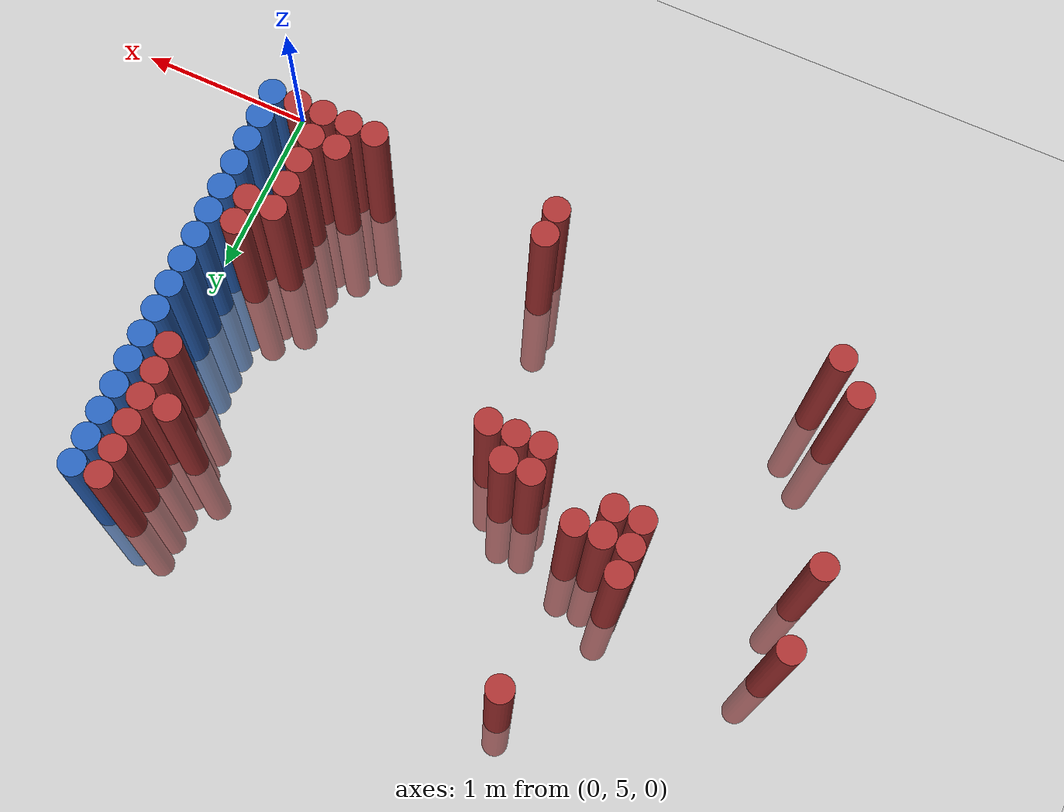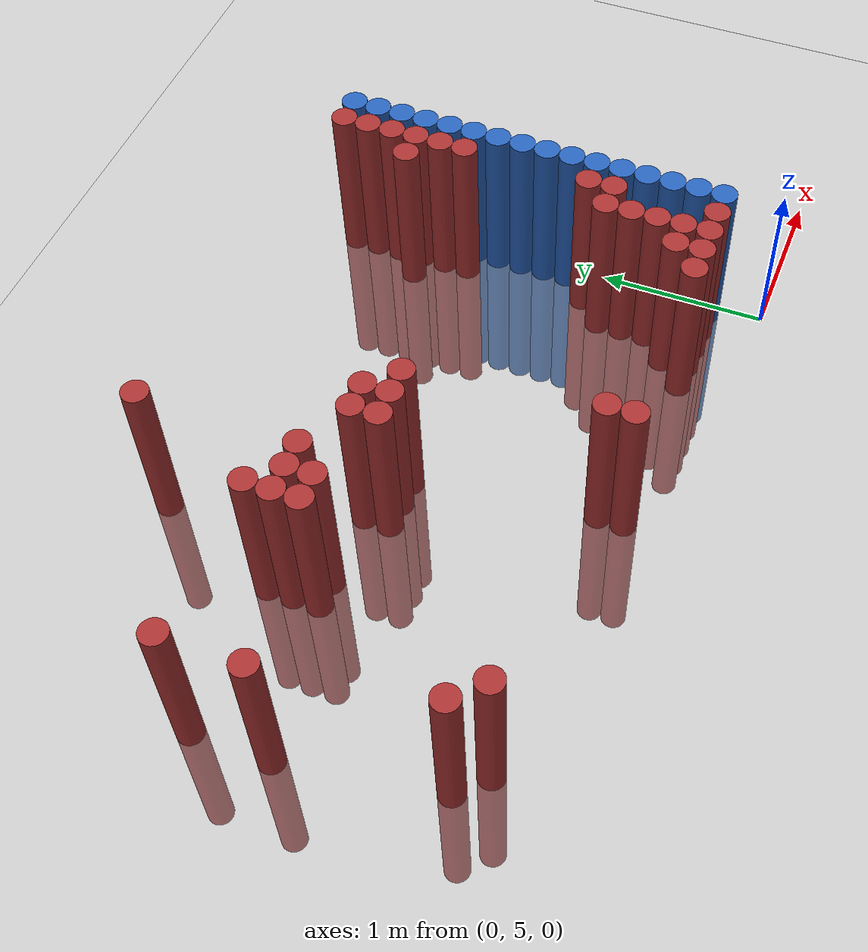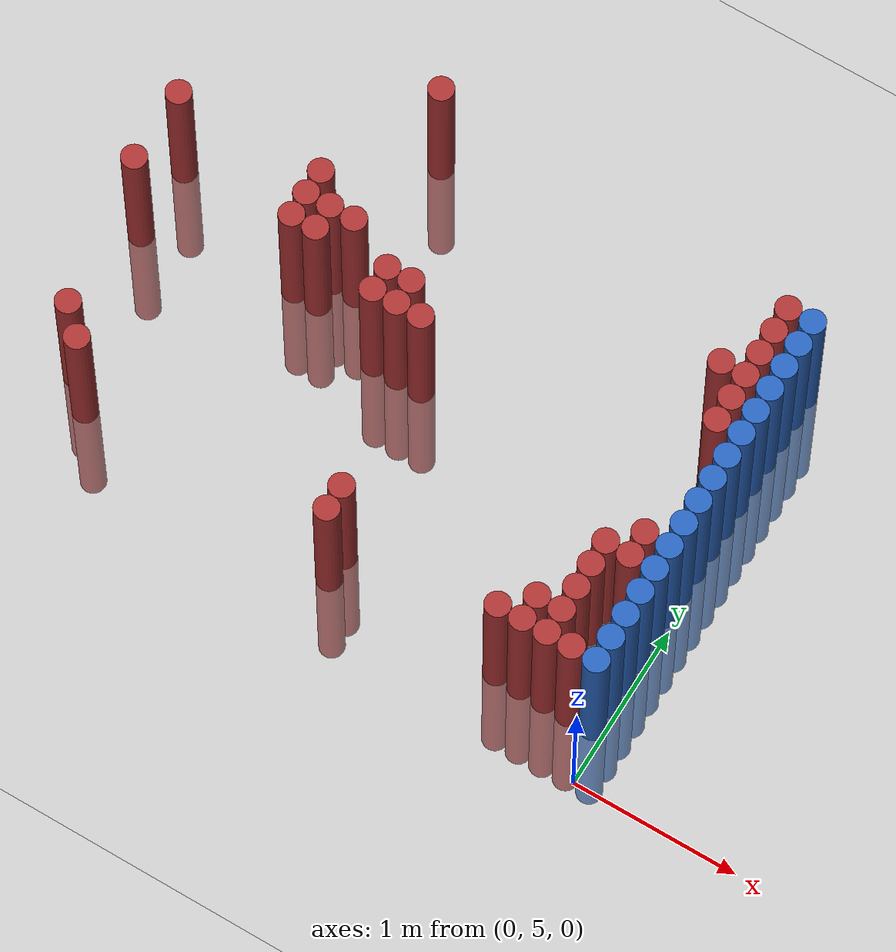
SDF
<sdf version="1.6">
 <world name="default">
  <model name="ground_plane">
   <static>1</static>
   <link name="link">
    <collision name="collision">
     <geometry><plane><normal>0 0 1</normal><size>100 100</size></plane></geometry>
     <surface><friction><ode><mu>100</mu><mu2>50</mu2></ode></friction></surface>
    </collision>
    <visual name="visual">
     <cast_shadows>0</cast_shadows>
     <geometry><plane><normal>0 0 1</normal><size>100 100</size></plane></geometry>
     <material>
      <script><uri>file://media/materials/scripts/gazebo.material</uri><name>Gazebo/Grey</name></script>
     </material>
    </visual>
   </link>
  </model>
  <model name="unit_cylinder_150">
   <static>1</static>
   <pose>-3.675000 6.525000 0.000000 0.000000 0.000000 0.000000</pose>
   <link name="link">
    <inertial>
     <mass>1</mass>
     <inertia><ixx>0.145833</ixx><ixy>0</ixy><ixz>0</ixz><iyy>0.145833</iyy><iyz>0</iyz><izz>0.125</izz></inertia>
    </inertial>
    <collision name="collision">
     <geometry><cylinder><radius>0.075000</radius><length>2</length></cylinder></geometry>
    </collision>
    <visual name="visual">
     <geometry><cylinder><radius>0.075000</radius><length>2</length></cylinder></geometry>
     <material>
      <ambient>0.648000 0.192000 0.192000 1</ambient>
      <diffuse>0.648000 0.192000 0.192000 1</diffuse>
     </material>
     <material>
      <script><name>Gazebo/Grey</name><uri>file://media/materials/scripts/gazebo.material</uri></script>
     </material>
    </visual>
   </link>
  </model>
  <model name="unit_cylinder_151">
   <static>1</static>
   <pose>-3.675000 6.975000 0.000000 0.000000 0.000000 0.000000</pose>
   <link name="link">
    <inertial>
     <mass>1</mass>
     <inertia><ixx>0.145833</ixx><ixy>0</ixy><ixz>0</ixz><iyy>0.145833</iyy><iyz>0</iyz><izz>0.125</izz></inertia>
    </inertial>
    <collision name="collision">
     <geometry><cylinder><radius>0.075000</radius><length>2</length></cylinder></geometry>
    </collision>
    <visual name="visual">
     <geometry><cylinder><radius>0.075000</radius><length>2</length></cylinder></geometry>
     <material>
      <ambient>0.648000 0.192000 0.192000 1</ambient>
      <diffuse>0.648000 0.192000 0.192000 1</diffuse>
     </material>
     <material>
      <script><name>Gazebo/Grey</name><uri>file://media/materials/scripts/gazebo.material</uri></script>
     </material>
    </visual>
   </link>
  </model>
  <model name="unit_cylinder_154">
   <static>1</static>
   <pose>-3.525000 5.625000 0.000000 0.000000 0.000000 0.000000</pose>
   <link name="link">
    <inertial>
     <mass>1</mass>
     <inertia><ixx>0.145833</ixx><ixy>0</ixy><ixz>0</ixz><iyy>0.145833</iyy><iyz>0</iyz><izz>0.125</izz></inertia>
    </inertial>
    <collision name="collision">
     <geometry><cylinder><radius>0.075000</radius><length>2</length></cylinder></geometry>
    </collision>
    <visual name="visual">
     <geometry><cylinder><radius>0.075000</radius><length>2</length></cylinder></geometry>
     <material>
      <ambient>0.648000 0.192000 0.192000 1</ambient>
      <diffuse>0.648000 0.192000 0.192000 1</diffuse>
     </material>
     <material>
      <script><name>Gazebo/Grey</name><uri>file://media/materials/scripts/gazebo.material</uri></script>
     </material>
    </visual>
   </link>
  </model>
  <model name="unit_cylinder_158">
   <static>1</static>
   <pose>-3.375000 5.475000 0.000000 0.000000 0.000000 0.000000</pose>
   <link name="link">
    <inertial>
     <mass>1</mass>
     <inertia><ixx>0.145833</ixx><ixy>0</ixy><ixz>0</ixz><iyy>0.145833</iyy><iyz>0</iyz><izz>0.125</izz></inertia>
    </inertial>
    <collision name="collision">
     <geometry><cylinder><radius>0.075000</radius><length>2</length></cylinder></geometry>
    </collision>
    <visual name="visual">
     <geometry><cylinder><radius>0.075000</radius><length>2</length></cylinder></geometry>
     <material>
      <ambient>0.648000 0.192000 0.192000 1</ambient>
      <diffuse>0.648000 0.192000 0.192000 1</diffuse>
     </material>
     <material>
      <script><name>Gazebo/Grey</name><uri>file://media/materials/scripts/gazebo.material</uri></script>
     </material>
    </visual>
   </link>
  </model>
  <model name="unit_cylinder_167">
   <static>1</static>
   <pose>-2.775000 6.675000 0.000000 0.000000 0.000000 0.000000</pose>
   <link name="link">
    <inertial>
     <mass>1</mass>
     <inertia><ixx>0.145833</ixx><ixy>0</ixy><ixz>0</ixz><iyy>0.145833</iyy><iyz>0</iyz><izz>0.125</izz></inertia>
    </inertial>
    <collision name="collision">
     <geometry><cylinder><radius>0.075000</radius><length>2</length></cylinder></geometry>
    </collision>
    <visual name="visual">
     <geometry><cylinder><radius>0.075000</radius><length>2</length></cylinder></geometry>
     <material>
      <ambient>0.648000 0.192000 0.192000 1</ambient>
      <diffuse>0.648000 0.192000 0.192000 1</diffuse>
     </material>
     <material>
      <script><name>Gazebo/Grey</name><uri>file://media/materials/scripts/gazebo.material</uri></script>
     </material>
    </visual>
   </link>
  </model>
  <model name="unit_cylinder_168">
   <static>1</static>
   <pose>-2.775000 6.825000 0.000000 0.000000 0.000000 0.000000</pose>
   <link name="link">
    <inertial>
     <mass>1</mass>
     <inertia><ixx>0.145833</ixx><ixy>0</ixy><ixz>0</ixz><iyy>0.145833</iyy><iyz>0</iyz><izz>0.125</izz></inertia>
    </inertial>
    <collision name="collision">
     <geometry><cylinder><radius>0.075000</radius><length>2</length></cylinder></geometry>
    </collision>
    <visual name="visual">
     <geometry><cylinder><radius>0.075000</radius><length>2</length></cylinder></geometry>
     <material>
      <ambient>0.648000 0.192000 0.192000 1</ambient>
      <diffuse>0.648000 0.192000 0.192000 1</diffuse>
     </material>
     <material>
      <script><name>Gazebo/Grey</name><uri>file://media/materials/scripts/gazebo.material</uri></script>
     </material>
    </visual>
   </link>
  </model>
  <model name="unit_cylinder_169">
   <static>1</static>
   <pose>-2.775000 6.975000 0.000000 0.000000 0.000000 0.000000</pose>
   <link name="link">
    <inertial>
     <mass>1</mass>
     <inertia><ixx>0.145833</ixx><ixy>0</ixy><ixz>0</ixz><iyy>0.145833</iyy><iyz>0</iyz><izz>0.125</izz></inertia>
    </inertial>
    <collision name="collision">
     <geometry><cylinder><radius>0.075000</radius><length>2</length></cylinder></geometry>
    </collision>
    <visual name="visual">
     <geometry><cylinder><radius>0.075000</radius><length>2</length></cylinder></geometry>
     <material>
      <ambient>0.648000 0.192000 0.192000 1</ambient>
      <diffuse>0.648000 0.192000 0.192000 1</diffuse>
     </material>
     <material>
      <script><name>Gazebo/Grey</name><uri>file://media/materials/scripts/gazebo.material</uri></script>
     </material>
    </visual>
   </link>
  </model>
  <model name="unit_cylinder_170">
   <static>1</static>
   <pose>-2.625000 6.675000 0.000000 0.000000 0.000000 0.000000</pose>
   <link name="link">
    <inertial>
     <mass>1</mass>
     <inertia><ixx>0.145833</ixx><ixy>0</ixy><ixz>0</ixz><iyy>0.145833</iyy><iyz>0</iyz><izz>0.125</izz></inertia>
    </inertial>
    <collision name="collision">
     <geometry><cylinder><radius>0.075000</radius><length>2</length></cylinder></geometry>
    </collision>
    <visual name="visual">
     <geometry><cylinder><radius>0.075000</radius><length>2</length></cylinder></geometry>
     <material>
      <ambient>0.648000 0.192000 0.192000 1</ambient>
      <diffuse>0.648000 0.192000 0.192000 1</diffuse>
     </material>
     <material>
      <script><name>Gazebo/Grey</name><uri>file://media/materials/scripts/gazebo.material</uri></script>
     </material>
    </visual>
   </link>
  </model>
  <model name="unit_cylinder_171">
   <static>1</static>
   <pose>-2.625000 6.825000 0.000000 0.000000 0.000000 0.000000</pose>
   <link name="link">
    <inertial>
     <mass>1</mass>
     <inertia><ixx>0.145833</ixx><ixy>0</ixy><ixz>0</ixz><iyy>0.145833</iyy><iyz>0</iyz><izz>0.125</izz></inertia>
    </inertial>
    <collision name="collision">
     <geometry><cylinder><radius>0.075000</radius><length>2</length></cylinder></geometry>
    </collision>
    <visual name="visual">
     <geometry><cylinder><radius>0.075000</radius><length>2</length></cylinder></geometry>
     <material>
      <ambient>0.648000 0.192000 0.192000 1</ambient>
      <diffuse>0.648000 0.192000 0.192000 1</diffuse>
     </material>
     <material>
      <script><name>Gazebo/Grey</name><uri>file://media/materials/scripts/gazebo.material</uri></script>
     </material>
    </visual>
   </link>
  </model>
  <model name="unit_cylinder_172">
   <static>1</static>
   <pose>-2.475000 6.825000 0.000000 0.000000 0.000000 0.000000</pose>
   <link name="link">
    <inertial>
     <mass>1</mass>
     <inertia><ixx>0.145833</ixx><ixy>0</ixy><ixz>0</ixz><iyy>0.145833</iyy><iyz>0</iyz><izz>0.125</izz></inertia>
    </inertial>
    <collision name="collision">
     <geometry><cylinder><radius>0.075000</radius><length>2</length></cylinder></geometry>
    </collision>
    <visual name="visual">
     <geometry><cylinder><radius>0.075000</radius><length>2</length></cylinder></geometry>
     <material>
      <ambient>0.648000 0.192000 0.192000 1</ambient>
      <diffuse>0.648000 0.192000 0.192000 1</diffuse>
     </material>
     <material>
      <script><name>Gazebo/Grey</name><uri>file://media/materials/scripts/gazebo.material</uri></script>
     </material>
    </visual>
   </link>
  </model>
  <model name="unit_cylinder_173">
   <static>1</static>
   <pose>-2.475000 7.725000 0.000000 0.000000 0.000000 0.000000</pose>
   <link name="link">
    <inertial>
     <mass>1</mass>
     <inertia><ixx>0.145833</ixx><ixy>0</ixy><ixz>0</ixz><iyy>0.145833</iyy><iyz>0</iyz><izz>0.125</izz></inertia>
    </inertial>
    <collision name="collision">
     <geometry><cylinder><radius>0.075000</radius><length>2</length></cylinder></geometry>
    </collision>
    <visual name="visual">
     <geometry><cylinder><radius>0.075000</radius><length>2</length></cylinder></geometry>
     <material>
      <ambient>0.648000 0.192000 0.192000 1</ambient>
      <diffuse>0.648000 0.192000 0.192000 1</diffuse>
     </material>
     <material>
      <script><name>Gazebo/Grey</name><uri>file://media/materials/scripts/gazebo.material</uri></script>
     </material>
    </visual>
   </link>
  </model>
  <model name="unit_cylinder_176">
   <static>1</static>
   <pose>-2.175000 6.525000 0.000000 0.000000 0.000000 0.000000</pose>
   <link name="link">
    <inertial>
     <mass>1</mass>
     <inertia><ixx>0.145833</ixx><ixy>0</ixy><ixz>0</ixz><iyy>0.145833</iyy><iyz>0</iyz><izz>0.125</izz></inertia>
    </inertial>
    <collision name="collision">
     <geometry><cylinder><radius>0.075000</radius><length>2</length></cylinder></geometry>
    </collision>
    <visual name="visual">
     <geometry><cylinder><radius>0.075000</radius><length>2</length></cylinder></geometry>
     <material>
      <ambient>0.648000 0.192000 0.192000 1</ambient>
      <diffuse>0.648000 0.192000 0.192000 1</diffuse>
     </material>
     <material>
      <script><name>Gazebo/Grey</name><uri>file://media/materials/scripts/gazebo.material</uri></script>
     </material>
    </visual>
   </link>
  </model>
  <model name="unit_cylinder_177">
   <static>1</static>
   <pose>-2.175000 6.675000 0.000000 0.000000 0.000000 0.000000</pose>
   <link name="link">
    <inertial>
     <mass>1</mass>
     <inertia><ixx>0.145833</ixx><ixy>0</ixy><ixz>0</ixz><iyy>0.145833</iyy><iyz>0</iyz><izz>0.125</izz></inertia>
    </inertial>
    <collision name="collision">
     <geometry><cylinder><radius>0.075000</radius><length>2</length></cylinder></geometry>
    </collision>
    <visual name="visual">
     <geometry><cylinder><radius>0.075000</radius><length>2</length></cylinder></geometry>
     <material>
      <ambient>0.648000 0.192000 0.192000 1</ambient>
      <diffuse>0.648000 0.192000 0.192000 1</diffuse>
     </material>
     <material>
      <script><name>Gazebo/Grey</name><uri>file://media/materials/scripts/gazebo.material</uri></script>
     </material>
    </visual>
   </link>
  </model>
  <model name="unit_cylinder_178">
   <static>1</static>
   <pose>-2.025000 6.525000 0.000000 0.000000 0.000000 0.000000</pose>
   <link name="link">
    <inertial>
     <mass>1</mass>
     <inertia><ixx>0.145833</ixx><ixy>0</ixy><ixz>0</ixz><iyy>0.145833</iyy><iyz>0</iyz><izz>0.125</izz></inertia>
    </inertial>
    <collision name="collision">
     <geometry><cylinder><radius>0.075000</radius><length>2</length></cylinder></geometry>
    </collision>
    <visual name="visual">
     <geometry><cylinder><radius>0.075000</radius><length>2</length></cylinder></geometry>
     <material>
      <ambient>0.648000 0.192000 0.192000 1</ambient>
      <diffuse>0.648000 0.192000 0.192000 1</diffuse>
     </material>
     <material>
      <script><name>Gazebo/Grey</name><uri>file://media/materials/scripts/gazebo.material</uri></script>
     </material>
    </visual>
   </link>
  </model>
  <model name="unit_cylinder_179">
   <static>1</static>
   <pose>-2.025000 6.675000 0.000000 0.000000 0.000000 0.000000</pose>
   <link name="link">
    <inertial>
     <mass>1</mass>
     <inertia><ixx>0.145833</ixx><ixy>0</ixy><ixz>0</ixz><iyy>0.145833</iyy><iyz>0</iyz><izz>0.125</izz></inertia>
    </inertial>
    <collision name="collision">
     <geometry><cylinder><radius>0.075000</radius><length>2</length></cylinder></geometry>
    </collision>
    <visual name="visual">
     <geometry><cylinder><radius>0.075000</radius><length>2</length></cylinder></geometry>
     <material>
      <ambient>0.648000 0.192000 0.192000 1</ambient>
      <diffuse>0.648000 0.192000 0.192000 1</diffuse>
     </material>
     <material>
      <script><name>Gazebo/Grey</name><uri>file://media/materials/scripts/gazebo.material</uri></script>
     </material>
    </visual>
   </link>
  </model>
  <model name="unit_cylinder_181">
   <static>1</static>
   <pose>-1.875000 6.525000 0.000000 0.000000 0.000000 0.000000</pose>
   <link name="link">
    <inertial>
     <mass>1</mass>
     <inertia><ixx>0.145833</ixx><ixy>0</ixy><ixz>0</ixz><iyy>0.145833</iyy><iyz>0</iyz><izz>0.125</izz></inertia>
    </inertial>
    <collision name="collision">
     <geometry><cylinder><radius>0.075000</radius><length>2</length></cylinder></geometry>
    </collision>
    <visual name="visual">
     <geometry><cylinder><radius>0.075000</radius><length>2</length></cylinder></geometry>
     <material>
      <ambient>0.648000 0.192000 0.192000 1</ambient>
      <diffuse>0.648000 0.192000 0.192000 1</diffuse>
     </material>
     <material>
      <script><name>Gazebo/Grey</name><uri>file://media/materials/scripts/gazebo.material</uri></script>
     </material>
    </visual>
   </link>
  </model>
  <model name="unit_cylinder_187">
   <static>1</static>
   <pose>-1.725000 5.325000 0.000000 0.000000 0.000000 0.000000</pose>
   <link name="link">
    <inertial>
     <mass>1</mass>
     <inertia><ixx>0.145833</ixx><ixy>0</ixy><ixz>0</ixz><iyy>0.145833</iyy><iyz>0</iyz><izz>0.125</izz></inertia>
    </inertial>
    <collision name="collision">
     <geometry><cylinder><radius>0.075000</radius><length>2</length></cylinder></geometry>
    </collision>
    <visual name="visual">
     <geometry><cylinder><radius>0.075000</radius><length>2</length></cylinder></geometry>
     <material>
      <ambient>0.648000 0.192000 0.192000 1</ambient>
      <diffuse>0.648000 0.192000 0.192000 1</diffuse>
     </material>
     <material>
      <script><name>Gazebo/Grey</name><uri>file://media/materials/scripts/gazebo.material</uri></script>
     </material>
    </visual>
   </link>
  </model>
  <model name="unit_cylinder_188">
   <static>1</static>
   <pose>-1.725000 5.475000 0.000000 0.000000 0.000000 0.000000</pose>
   <link name="link">
    <inertial>
     <mass>1</mass>
     <inertia><ixx>0.145833</ixx><ixy>0</ixy><ixz>0</ixz><iyy>0.145833</iyy><iyz>0</iyz><izz>0.125</izz></inertia>
    </inertial>
    <collision name="collision">
     <geometry><cylinder><radius>0.075000</radius><length>2</length></cylinder></geometry>
    </collision>
    <visual name="visual">
     <geometry><cylinder><radius>0.075000</radius><length>2</length></cylinder></geometry>
     <material>
      <ambient>0.648000 0.192000 0.192000 1</ambient>
      <diffuse>0.648000 0.192000 0.192000 1</diffuse>
     </material>
     <material>
      <script><name>Gazebo/Grey</name><uri>file://media/materials/scripts/gazebo.material</uri></script>
     </material>
    </visual>
   </link>
  </model>
  <model name="unit_cylinder_209">
   <static>1</static>
   <pose>-0.675000 5.325000 0.000000 0.000000 0.000000 0.000000</pose>
   <link name="link">
    <inertial>
     <mass>1</mass>
     <inertia><ixx>0.145833</ixx><ixy>0</ixy><ixz>0</ixz><iyy>0.145833</iyy><iyz>0</iyz><izz>0.125</izz></inertia>
    </inertial>
    <collision name="collision">
     <geometry><cylinder><radius>0.075000</radius><length>2</length></cylinder></geometry>
    </collision>
    <visual name="visual">
     <geometry><cylinder><radius>0.075000</radius><length>2</length></cylinder></geometry>
     <material>
      <ambient>0.648000 0.192000 0.192000 1</ambient>
      <diffuse>0.648000 0.192000 0.192000 1</diffuse>
     </material>
     <material>
      <script><name>Gazebo/Grey</name><uri>file://media/materials/scripts/gazebo.material</uri></script>
     </material>
    </visual>
   </link>
  </model>
  <model name="unit_cylinder_211">
   <static>1</static>
   <pose>-0.525000 5.325000 0.000000 0.000000 0.000000 0.000000</pose>
   <link name="link">
    <inertial>
     <mass>1</mass>
     <inertia><ixx>0.145833</ixx><ixy>0</ixy><ixz>0</ixz><iyy>0.145833</iyy><iyz>0</iyz><izz>0.125</izz></inertia>
    </inertial>
    <collision name="collision">
     <geometry><cylinder><radius>0.075000</radius><length>2</length></cylinder></geometry>
    </collision>
    <visual name="visual">
     <geometry><cylinder><radius>0.075000</radius><length>2</length></cylinder></geometry>
     <material>
      <ambient>0.648000 0.192000 0.192000 1</ambient>
      <diffuse>0.648000 0.192000 0.192000 1</diffuse>
     </material>
     <material>
      <script><name>Gazebo/Grey</name><uri>file://media/materials/scripts/gazebo.material</uri></script>
     </material>
    </visual>
   </link>
  </model>
  <model name="unit_cylinder_212">
   <static>1</static>
   <pose>-0.525000 5.475000 0.000000 0.000000 0.000000 0.000000</pose>
   <link name="link">
    <inertial>
     <mass>1</mass>
     <inertia><ixx>0.145833</ixx><ixy>0</ixy><ixz>0</ixz><iyy>0.145833</iyy><iyz>0</iyz><izz>0.125</izz></inertia>
    </inertial>
    <collision name="collision">
     <geometry><cylinder><radius>0.075000</radius><length>2</length></cylinder></geometry>
    </collision>
    <visual name="visual">
     <geometry><cylinder><radius>0.075000</radius><length>2</length></cylinder></geometry>
     <material>
      <ambient>0.648000 0.192000 0.192000 1</ambient>
      <diffuse>0.648000 0.192000 0.192000 1</diffuse>
     </material>
     <material>
      <script><name>Gazebo/Grey</name><uri>file://media/materials/scripts/gazebo.material</uri></script>
     </material>
    </visual>
   </link>
  </model>
  <model name="unit_cylinder_213">
   <static>1</static>
   <pose>-0.375000 5.325000 0.000000 0.000000 0.000000 0.000000</pose>
   <link name="link">
    <inertial>
     <mass>1</mass>
     <inertia><ixx>0.145833</ixx><ixy>0</ixy><ixz>0</ixz><iyy>0.145833</iyy><iyz>0</iyz><izz>0.125</izz></inertia>
    </inertial>
    <collision name="collision">
     <geometry><cylinder><radius>0.075000</radius><length>2</length></cylinder></geometry>
    </collision>
    <visual name="visual">
     <geometry><cylinder><radius>0.075000</radius><length>2</length></cylinder></geometry>
     <material>
      <ambient>0.648000 0.192000 0.192000 1</ambient>
      <diffuse>0.648000 0.192000 0.192000 1</diffuse>
     </material>
     <material>
      <script><name>Gazebo/Grey</name><uri>file://media/materials/scripts/gazebo.material</uri></script>
     </material>
    </visual>
   </link>
  </model>
  <model name="unit_cylinder_214">
   <static>1</static>
   <pose>-0.375000 5.475000 0.000000 0.000000 0.000000 0.000000</pose>
   <link name="link">
    <inertial>
     <mass>1</mass>
     <inertia><ixx>0.145833</ixx><ixy>0</ixy><ixz>0</ixz><iyy>0.145833</iyy><iyz>0</iyz><izz>0.125</izz></inertia>
    </inertial>
    <collision name="collision">
     <geometry><cylinder><radius>0.075000</radius><length>2</length></cylinder></geometry>
    </collision>
    <visual name="visual">
     <geometry><cylinder><radius>0.075000</radius><length>2</length></cylinder></geometry>
     <material>
      <ambient>0.648000 0.192000 0.192000 1</ambient>
      <diffuse>0.648000 0.192000 0.192000 1</diffuse>
     </material>
     <material>
      <script><name>Gazebo/Grey</name><uri>file://media/materials/scripts/gazebo.material</uri></script>
     </material>
    </visual>
   </link>
  </model>
  <model name="unit_cylinder_215">
   <static>1</static>
   <pose>-0.375000 5.625000 0.000000 0.000000 0.000000 0.000000</pose>
   <link name="link">
    <inertial>
     <mass>1</mass>
     <inertia><ixx>0.145833</ixx><ixy>0</ixy><ixz>0</ixz><iyy>0.145833</iyy><iyz>0</iyz><izz>0.125</izz></inertia>
    </inertial>
    <collision name="collision">
     <geometry><cylinder><radius>0.075000</radius><length>2</length></cylinder></geometry>
    </collision>
    <visual name="visual">
     <geometry><cylinder><radius>0.075000</radius><length>2</length></cylinder></geometry>
     <material>
      <ambient>0.648000 0.192000 0.192000 1</ambient>
      <diffuse>0.648000 0.192000 0.192000 1</diffuse>
     </material>
     <material>
      <script><name>Gazebo/Grey</name><uri>file://media/materials/scripts/gazebo.material</uri></script>
     </material>
    </visual>
   </link>
  </model>
  <model name="unit_cylinder_216">
   <static>1</static>
   <pose>-0.375000 5.775000 0.000000 0.000000 0.000000 0.000000</pose>
   <link name="link">
    <inertial>
     <mass>1</mass>
     <inertia><ixx>0.145833</ixx><ixy>0</ixy><ixz>0</ixz><iyy>0.145833</iyy><iyz>0</iyz><izz>0.125</izz></inertia>
    </inertial>
    <collision name="collision">
     <geometry><cylinder><radius>0.075000</radius><length>2</length></cylinder></geometry>
    </collision>
    <visual name="visual">
     <geometry><cylinder><radius>0.075000</radius><length>2</length></cylinder></geometry>
     <material>
      <ambient>0.648000 0.192000 0.192000 1</ambient>
      <diffuse>0.648000 0.192000 0.192000 1</diffuse>
     </material>
     <material>
      <script><name>Gazebo/Grey</name><uri>file://media/materials/scripts/gazebo.material</uri></script>
     </material>
    </visual>
   </link>
  </model>
  <model name="unit_cylinder_217">
   <static>1</static>
   <pose>-0.375000 5.925000 0.000000 0.000000 0.000000 0.000000</pose>
   <link name="link">
    <inertial>
     <mass>1</mass>
     <inertia><ixx>0.145833</ixx><ixy>0</ixy><ixz>0</ixz><iyy>0.145833</iyy><iyz>0</iyz><izz>0.125</izz></inertia>
    </inertial>
    <collision name="collision">
     <geometry><cylinder><radius>0.075000</radius><length>2</length></cylinder></geometry>
    </collision>
    <visual name="visual">
     <geometry><cylinder><radius>0.075000</radius><length>2</length></cylinder></geometry>
     <material>
      <ambient>0.648000 0.192000 0.192000 1</ambient>
      <diffuse>0.648000 0.192000 0.192000 1</diffuse>
     </material>
     <material>
      <script><name>Gazebo/Grey</name><uri>file://media/materials/scripts/gazebo.material</uri></script>
     </material>
    </visual>
   </link>
  </model>
  <model name="unit_cylinder_218">
   <static>1</static>
   <pose>-0.375000 7.125000 0.000000 0.000000 0.000000 0.000000</pose>
   <link name="link">
    <inertial>
     <mass>1</mass>
     <inertia><ixx>0.145833</ixx><ixy>0</ixy><ixz>0</ixz><iyy>0.145833</iyy><iyz>0</iyz><izz>0.125</izz></inertia>
    </inertial>
    <collision name="collision">
     <geometry><cylinder><radius>0.075000</radius><length>2</length></cylinder></geometry>
    </collision>
    <visual name="visual">
     <geometry><cylinder><radius>0.075000</radius><length>2</length></cylinder></geometry>
     <material>
      <ambient>0.648000 0.192000 0.192000 1</ambient>
      <diffuse>0.648000 0.192000 0.192000 1</diffuse>
     </material>
     <material>
      <script><name>Gazebo/Grey</name><uri>file://media/materials/scripts/gazebo.material</uri></script>
     </material>
    </visual>
   </link>
  </model>
  <model name="unit_cylinder_219">
   <static>1</static>
   <pose>-0.225000 5.325000 0.000000 0.000000 0.000000 0.000000</pose>
   <link name="link">
    <inertial>
     <mass>1</mass>
     <inertia><ixx>0.145833</ixx><ixy>0</ixy><ixz>0</ixz><iyy>0.145833</iyy><iyz>0</iyz><izz>0.125</izz></inertia>
    </inertial>
    <collision name="collision">
     <geometry><cylinder><radius>0.075000</radius><length>2</length></cylinder></geometry>
    </collision>
    <visual name="visual">
     <geometry><cylinder><radius>0.075000</radius><length>2</length></cylinder></geometry>
     <material>
      <ambient>0.648000 0.192000 0.192000 1</ambient>
      <diffuse>0.648000 0.192000 0.192000 1</diffuse>
     </material>
     <material>
      <script><name>Gazebo/Grey</name><uri>file://media/materials/scripts/gazebo.material</uri></script>
     </material>
    </visual>
   </link>
  </model>
  <model name="unit_cylinder_220">
   <static>1</static>
   <pose>-0.225000 5.925000 0.000000 0.000000 0.000000 0.000000</pose>
   <link name="link">
    <inertial>
     <mass>1</mass>
     <inertia><ixx>0.145833</ixx><ixy>0</ixy><ixz>0</ixz><iyy>0.145833</iyy><iyz>0</iyz><izz>0.125</izz></inertia>
    </inertial>
    <collision name="collision">
     <geometry><cylinder><radius>0.075000</radius><length>2</length></cylinder></geometry>
    </collision>
    <visual name="visual">
     <geometry><cylinder><radius>0.075000</radius><length>2</length></cylinder></geometry>
     <material>
      <ambient>0.648000 0.192000 0.192000 1</ambient>
      <diffuse>0.648000 0.192000 0.192000 1</diffuse>
     </material>
     <material>
      <script><name>Gazebo/Grey</name><uri>file://media/materials/scripts/gazebo.material</uri></script>
     </material>
    </visual>
   </link>
  </model>
  <model name="unit_cylinder_221">
   <static>1</static>
   <pose>-0.225000 6.075000 0.000000 0.000000 0.000000 0.000000</pose>
   <link name="link">
    <inertial>
     <mass>1</mass>
     <inertia><ixx>0.145833</ixx><ixy>0</ixy><ixz>0</ixz><iyy>0.145833</iyy><iyz>0</iyz><izz>0.125</izz></inertia>
    </inertial>
    <collision name="collision">
     <geometry><cylinder><radius>0.075000</radius><length>2</length></cylinder></geometry>
    </collision>
    <visual name="visual">
     <geometry><cylinder><radius>0.075000</radius><length>2</length></cylinder></geometry>
     <material>
      <ambient>0.648000 0.192000 0.192000 1</ambient>
      <diffuse>0.648000 0.192000 0.192000 1</diffuse>
     </material>
     <material>
      <script><name>Gazebo/Grey</name><uri>file://media/materials/scripts/gazebo.material</uri></script>
     </material>
    </visual>
   </link>
  </model>
  <model name="unit_cylinder_222">
   <static>1</static>
   <pose>-0.225000 6.825000 0.000000 0.000000 0.000000 0.000000</pose>
   <link name="link">
    <inertial>
     <mass>1</mass>
     <inertia><ixx>0.145833</ixx><ixy>0</ixy><ixz>0</ixz><iyy>0.145833</iyy><iyz>0</iyz><izz>0.125</izz></inertia>
    </inertial>
    <collision name="collision">
     <geometry><cylinder><radius>0.075000</radius><length>2</length></cylinder></geometry>
    </collision>
    <visual name="visual">
     <geometry><cylinder><radius>0.075000</radius><length>2</length></cylinder></geometry>
     <material>
      <ambient>0.648000 0.192000 0.192000 1</ambient>
      <diffuse>0.648000 0.192000 0.192000 1</diffuse>
     </material>
     <material>
      <script><name>Gazebo/Grey</name><uri>file://media/materials/scripts/gazebo.material</uri></script>
     </material>
    </visual>
   </link>
  </model>
  <model name="unit_cylinder_223">
   <static>1</static>
   <pose>-0.225000 6.975000 0.000000 0.000000 0.000000 0.000000</pose>
   <link name="link">
    <inertial>
     <mass>1</mass>
     <inertia><ixx>0.145833</ixx><ixy>0</ixy><ixz>0</ixz><iyy>0.145833</iyy><iyz>0</iyz><izz>0.125</izz></inertia>
    </inertial>
    <collision name="collision">
     <geometry><cylinder><radius>0.075000</radius><length>2</length></cylinder></geometry>
    </collision>
    <visual name="visual">
     <geometry><cylinder><radius>0.075000</radius><length>2</length></cylinder></geometry>
     <material>
      <ambient>0.648000 0.192000 0.192000 1</ambient>
      <diffuse>0.648000 0.192000 0.192000 1</diffuse>
     </material>
     <material>
      <script><name>Gazebo/Grey</name><uri>file://media/materials/scripts/gazebo.material</uri></script>
     </material>
    </visual>
   </link>
  </model>
  <model name="unit_cylinder_224">
   <static>1</static>
   <pose>-0.225000 7.125000 0.000000 0.000000 0.000000 0.000000</pose>
   <link name="link">
    <inertial>
     <mass>1</mass>
     <inertia><ixx>0.145833</ixx><ixy>0</ixy><ixz>0</ixz><iyy>0.145833</iyy><iyz>0</iyz><izz>0.125</izz></inertia>
    </inertial>
    <collision name="collision">
     <geometry><cylinder><radius>0.075000</radius><length>2</length></cylinder></geometry>
    </collision>
    <visual name="visual">
     <geometry><cylinder><radius>0.075000</radius><length>2</length></cylinder></geometry>
     <material>
      <ambient>0.648000 0.192000 0.192000 1</ambient>
      <diffuse>0.648000 0.192000 0.192000 1</diffuse>
     </material>
     <material>
      <script><name>Gazebo/Grey</name><uri>file://media/materials/scripts/gazebo.material</uri></script>
     </material>
    </visual>
   </link>
  </model>
  <model name="unit_cylinder_225">
   <static>1</static>
   <pose>-0.225000 7.275000 0.000000 0.000000 0.000000 0.000000</pose>
   <link name="link">
    <inertial>
     <mass>1</mass>
     <inertia><ixx>0.145833</ixx><ixy>0</ixy><ixz>0</ixz><iyy>0.145833</iyy><iyz>0</iyz><izz>0.125</izz></inertia>
    </inertial>
    <collision name="collision">
     <geometry><cylinder><radius>0.075000</radius><length>2</length></cylinder></geometry>
    </collision>
    <visual name="visual">
     <geometry><cylinder><radius>0.075000</radius><length>2</length></cylinder></geometry>
     <material>
      <ambient>0.648000 0.192000 0.192000 1</ambient>
      <diffuse>0.648000 0.192000 0.192000 1</diffuse>
     </material>
     <material>
      <script><name>Gazebo/Grey</name><uri>file://media/materials/scripts/gazebo.material</uri></script>
     </material>
    </visual>
   </link>
  </model>
  <model name="unit_cylinder_226">
   <static>1</static>
   <pose>-0.225000 7.425000 0.000000 0.000000 0.000000 0.000000</pose>
   <link name="link">
    <inertial>
     <mass>1</mass>
     <inertia><ixx>0.145833</ixx><ixy>0</ixy><ixz>0</ixz><iyy>0.145833</iyy><iyz>0</iyz><izz>0.125</izz></inertia>
    </inertial>
    <collision name="collision">
     <geometry><cylinder><radius>0.075000</radius><length>2</length></cylinder></geometry>
    </collision>
    <visual name="visual">
     <geometry><cylinder><radius>0.075000</radius><length>2</length></cylinder></geometry>
     <material>
      <ambient>0.648000 0.192000 0.192000 1</ambient>
      <diffuse>0.648000 0.192000 0.192000 1</diffuse>
     </material>
     <material>
      <script><name>Gazebo/Grey</name><uri>file://media/materials/scripts/gazebo.material</uri></script>
     </material>
    </visual>
   </link>
  </model>
  <model name="unit_cylinder_227">
   <static>1</static>
   <pose>-0.225000 7.575000 0.000000 0.000000 0.000000 0.000000</pose>
   <link name="link">
    <inertial>
     <mass>1</mass>
     <inertia><ixx>0.145833</ixx><ixy>0</ixy><ixz>0</ixz><iyy>0.145833</iyy><iyz>0</iyz><izz>0.125</izz></inertia>
    </inertial>
    <collision name="collision">
     <geometry><cylinder><radius>0.075000</radius><length>2</length></cylinder></geometry>
    </collision>
    <visual name="visual">
     <geometry><cylinder><radius>0.075000</radius><length>2</length></cylinder></geometry>
     <material>
      <ambient>0.648000 0.192000 0.192000 1</ambient>
      <diffuse>0.648000 0.192000 0.192000 1</diffuse>
     </material>
     <material>
      <script><name>Gazebo/Grey</name><uri>file://media/materials/scripts/gazebo.material</uri></script>
     </material>
    </visual>
   </link>
  </model>
  <model name="unit_cylinder_231">
   <static>1</static>
   <pose>-0.075000 5.325000 0.000000 0.000000 0.000000 0.000000</pose>
   <link name="link">
    <inertial>
     <mass>1</mass>
     <inertia><ixx>0.145833</ixx><ixy>0</ixy><ixz>0</ixz><iyy>0.145833</iyy><iyz>0</iyz><izz>0.125</izz></inertia>
    </inertial>
    <collision name="collision">
     <geometry><cylinder><radius>0.075000</radius><length>2</length></cylinder></geometry>
    </collision>
    <visual name="visual">
     <geometry><cylinder><radius>0.075000</radius><length>2</length></cylinder></geometry>
     <material>
      <ambient>0.152000 0.379000 0.720000 1</ambient>
      <diffuse>0.152000 0.379000 0.720000 1</diffuse>
     </material>
     <material>
      <script><name>Gazebo/Grey</name><uri>file://media/materials/scripts/gazebo.material</uri></script>
     </material>
    </visual>
   </link>
  </model>
  <model name="unit_cylinder_232">
   <static>1</static>
   <pose>-0.075000 5.475000 0.000000 0.000000 0.000000 0.000000</pose>
   <link name="link">
    <inertial>
     <mass>1</mass>
     <inertia><ixx>0.145833</ixx><ixy>0</ixy><ixz>0</ixz><iyy>0.145833</iyy><iyz>0</iyz><izz>0.125</izz></inertia>
    </inertial>
    <collision name="collision">
     <geometry><cylinder><radius>0.075000</radius><length>2</length></cylinder></geometry>
    </collision>
    <visual name="visual">
     <geometry><cylinder><radius>0.075000</radius><length>2</length></cylinder></geometry>
     <material>
      <ambient>0.152000 0.379000 0.720000 1</ambient>
      <diffuse>0.152000 0.379000 0.720000 1</diffuse>
     </material>
     <material>
      <script><name>Gazebo/Grey</name><uri>file://media/materials/scripts/gazebo.material</uri></script>
     </material>
    </visual>
   </link>
  </model>
  <model name="unit_cylinder_233">
   <static>1</static>
   <pose>-0.075000 5.625000 0.000000 0.000000 0.000000 0.000000</pose>
   <link name="link">
    <inertial>
     <mass>1</mass>
     <inertia><ixx>0.145833</ixx><ixy>0</ixy><ixz>0</ixz><iyy>0.145833</iyy><iyz>0</iyz><izz>0.125</izz></inertia>
    </inertial>
    <collision name="collision">
     <geometry><cylinder><radius>0.075000</radius><length>2</length></cylinder></geometry>
    </collision>
    <visual name="visual">
     <geometry><cylinder><radius>0.075000</radius><length>2</length></cylinder></geometry>
     <material>
      <ambient>0.152000 0.379000 0.720000 1</ambient>
      <diffuse>0.152000 0.379000 0.720000 1</diffuse>
     </material>
     <material>
      <script><name>Gazebo/Grey</name><uri>file://media/materials/scripts/gazebo.material</uri></script>
     </material>
    </visual>
   </link>
  </model>
  <model name="unit_cylinder_234">
   <static>1</static>
   <pose>-0.075000 5.775000 0.000000 0.000000 0.000000 0.000000</pose>
   <link name="link">
    <inertial>
     <mass>1</mass>
     <inertia><ixx>0.145833</ixx><ixy>0</ixy><ixz>0</ixz><iyy>0.145833</iyy><iyz>0</iyz><izz>0.125</izz></inertia>
    </inertial>
    <collision name="collision">
     <geometry><cylinder><radius>0.075000</radius><length>2</length></cylinder></geometry>
    </collision>
    <visual name="visual">
     <geometry><cylinder><radius>0.075000</radius><length>2</length></cylinder></geometry>
     <material>
      <ambient>0.152000 0.379000 0.720000 1</ambient>
      <diffuse>0.152000 0.379000 0.720000 1</diffuse>
     </material>
     <material>
      <script><name>Gazebo/Grey</name><uri>file://media/materials/scripts/gazebo.material</uri></script>
     </material>
    </visual>
   </link>
  </model>
  <model name="unit_cylinder_235">
   <static>1</static>
   <pose>-0.075000 5.925000 0.000000 0.000000 0.000000 0.000000</pose>
   <link name="link">
    <inertial>
     <mass>1</mass>
     <inertia><ixx>0.145833</ixx><ixy>0</ixy><ixz>0</ixz><iyy>0.145833</iyy><iyz>0</iyz><izz>0.125</izz></inertia>
    </inertial>
    <collision name="collision">
     <geometry><cylinder><radius>0.075000</radius><length>2</length></cylinder></geometry>
    </collision>
    <visual name="visual">
     <geometry><cylinder><radius>0.075000</radius><length>2</length></cylinder></geometry>
     <material>
      <ambient>0.152000 0.379000 0.720000 1</ambient>
      <diffuse>0.152000 0.379000 0.720000 1</diffuse>
     </material>
     <material>
      <script><name>Gazebo/Grey</name><uri>file://media/materials/scripts/gazebo.material</uri></script>
     </material>
    </visual>
   </link>
  </model>
  <model name="unit_cylinder_236">
   <static>1</static>
   <pose>-0.075000 6.075000 0.000000 0.000000 0.000000 0.000000</pose>
   <link name="link">
    <inertial>
     <mass>1</mass>
     <inertia><ixx>0.145833</ixx><ixy>0</ixy><ixz>0</ixz><iyy>0.145833</iyy><iyz>0</iyz><izz>0.125</izz></inertia>
    </inertial>
    <collision name="collision">
     <geometry><cylinder><radius>0.075000</radius><length>2</length></cylinder></geometry>
    </collision>
    <visual name="visual">
     <geometry><cylinder><radius>0.075000</radius><length>2</length></cylinder></geometry>
     <material>
      <ambient>0.152000 0.379000 0.720000 1</ambient>
      <diffuse>0.152000 0.379000 0.720000 1</diffuse>
     </material>
     <material>
      <script><name>Gazebo/Grey</name><uri>file://media/materials/scripts/gazebo.material</uri></script>
     </material>
    </visual>
   </link>
  </model>
  <model name="unit_cylinder_237">
   <static>1</static>
   <pose>-0.075000 6.225000 0.000000 0.000000 0.000000 0.000000</pose>
   <link name="link">
    <inertial>
     <mass>1</mass>
     <inertia><ixx>0.145833</ixx><ixy>0</ixy><ixz>0</ixz><iyy>0.145833</iyy><iyz>0</iyz><izz>0.125</izz></inertia>
    </inertial>
    <collision name="collision">
     <geometry><cylinder><radius>0.075000</radius><length>2</length></cylinder></geometry>
    </collision>
    <visual name="visual">
     <geometry><cylinder><radius>0.075000</radius><length>2</length></cylinder></geometry>
     <material>
      <ambient>0.152000 0.379000 0.720000 1</ambient>
      <diffuse>0.152000 0.379000 0.720000 1</diffuse>
     </material>
     <material>
      <script><name>Gazebo/Grey</name><uri>file://media/materials/scripts/gazebo.material</uri></script>
     </material>
    </visual>
   </link>
  </model>
  <model name="unit_cylinder_238">
   <static>1</static>
   <pose>-0.075000 6.375000 0.000000 0.000000 0.000000 0.000000</pose>
   <link name="link">
    <inertial>
     <mass>1</mass>
     <inertia><ixx>0.145833</ixx><ixy>0</ixy><ixz>0</ixz><iyy>0.145833</iyy><iyz>0</iyz><izz>0.125</izz></inertia>
    </inertial>
    <collision name="collision">
     <geometry><cylinder><radius>0.075000</radius><length>2</length></cylinder></geometry>
    </collision>
    <visual name="visual">
     <geometry><cylinder><radius>0.075000</radius><length>2</length></cylinder></geometry>
     <material>
      <ambient>0.152000 0.379000 0.720000 1</ambient>
      <diffuse>0.152000 0.379000 0.720000 1</diffuse>
     </material>
     <material>
      <script><name>Gazebo/Grey</name><uri>file://media/materials/scripts/gazebo.material</uri></script>
     </material>
    </visual>
   </link>
  </model>
  <model name="unit_cylinder_239">
   <static>1</static>
   <pose>-0.075000 6.525000 0.000000 0.000000 0.000000 0.000000</pose>
   <link name="link">
    <inertial>
     <mass>1</mass>
     <inertia><ixx>0.145833</ixx><ixy>0</ixy><ixz>0</ixz><iyy>0.145833</iyy><iyz>0</iyz><izz>0.125</izz></inertia>
    </inertial>
    <collision name="collision">
     <geometry><cylinder><radius>0.075000</radius><length>2</length></cylinder></geometry>
    </collision>
    <visual name="visual">
     <geometry><cylinder><radius>0.075000</radius><length>2</length></cylinder></geometry>
     <material>
      <ambient>0.152000 0.379000 0.720000 1</ambient>
      <diffuse>0.152000 0.379000 0.720000 1</diffuse>
     </material>
     <material>
      <script><name>Gazebo/Grey</name><uri>file://media/materials/scripts/gazebo.material</uri></script>
     </material>
    </visual>
   </link>
  </model>
  <model name="unit_cylinder_240">
   <static>1</static>
   <pose>-0.075000 6.675000 0.000000 0.000000 0.000000 0.000000</pose>
   <link name="link">
    <inertial>
     <mass>1</mass>
     <inertia><ixx>0.145833</ixx><ixy>0</ixy><ixz>0</ixz><iyy>0.145833</iyy><iyz>0</iyz><izz>0.125</izz></inertia>
    </inertial>
    <collision name="collision">
     <geometry><cylinder><radius>0.075000</radius><length>2</length></cylinder></geometry>
    </collision>
    <visual name="visual">
     <geometry><cylinder><radius>0.075000</radius><length>2</length></cylinder></geometry>
     <material>
      <ambient>0.152000 0.379000 0.720000 1</ambient>
      <diffuse>0.152000 0.379000 0.720000 1</diffuse>
     </material>
     <material>
      <script><name>Gazebo/Grey</name><uri>file://media/materials/scripts/gazebo.material</uri></script>
     </material>
    </visual>
   </link>
  </model>
  <model name="unit_cylinder_241">
   <static>1</static>
   <pose>-0.075000 6.825000 0.000000 0.000000 0.000000 0.000000</pose>
   <link name="link">
    <inertial>
     <mass>1</mass>
     <inertia><ixx>0.145833</ixx><ixy>0</ixy><ixz>0</ixz><iyy>0.145833</iyy><iyz>0</iyz><izz>0.125</izz></inertia>
    </inertial>
    <collision name="collision">
     <geometry><cylinder><radius>0.075000</radius><length>2</length></cylinder></geometry>
    </collision>
    <visual name="visual">
     <geometry><cylinder><radius>0.075000</radius><length>2</length></cylinder></geometry>
     <material>
      <ambient>0.152000 0.379000 0.720000 1</ambient>
      <diffuse>0.152000 0.379000 0.720000 1</diffuse>
     </material>
     <material>
      <script><name>Gazebo/Grey</name><uri>file://media/materials/scripts/gazebo.material</uri></script>
     </material>
    </visual>
   </link>
  </model>
  <model name="unit_cylinder_242">
   <static>1</static>
   <pose>-0.075000 6.975000 0.000000 0.000000 0.000000 0.000000</pose>
   <link name="link">
    <inertial>
     <mass>1</mass>
     <inertia><ixx>0.145833</ixx><ixy>0</ixy><ixz>0</ixz><iyy>0.145833</iyy><iyz>0</iyz><izz>0.125</izz></inertia>
    </inertial>
    <collision name="collision">
     <geometry><cylinder><radius>0.075000</radius><length>2</length></cylinder></geometry>
    </collision>
    <visual name="visual">
     <geometry><cylinder><radius>0.075000</radius><length>2</length></cylinder></geometry>
     <material>
      <ambient>0.152000 0.379000 0.720000 1</ambient>
      <diffuse>0.152000 0.379000 0.720000 1</diffuse>
     </material>
     <material>
      <script><name>Gazebo/Grey</name><uri>file://media/materials/scripts/gazebo.material</uri></script>
     </material>
    </visual>
   </link>
  </model>
  <model name="unit_cylinder_243">
   <static>1</static>
   <pose>-0.075000 7.125000 0.000000 0.000000 0.000000 0.000000</pose>
   <link name="link">
    <inertial>
     <mass>1</mass>
     <inertia><ixx>0.145833</ixx><ixy>0</ixy><ixz>0</ixz><iyy>0.145833</iyy><iyz>0</iyz><izz>0.125</izz></inertia>
    </inertial>
    <collision name="collision">
     <geometry><cylinder><radius>0.075000</radius><length>2</length></cylinder></geometry>
    </collision>
    <visual name="visual">
     <geometry><cylinder><radius>0.075000</radius><length>2</length></cylinder></geometry>
     <material>
      <ambient>0.152000 0.379000 0.720000 1</ambient>
      <diffuse>0.152000 0.379000 0.720000 1</diffuse>
     </material>
     <material>
      <script><name>Gazebo/Grey</name><uri>file://media/materials/scripts/gazebo.material</uri></script>
     </material>
    </visual>
   </link>
  </model>
  <model name="unit_cylinder_244">
   <static>1</static>
   <pose>-0.075000 7.275000 0.000000 0.000000 0.000000 0.000000</pose>
   <link name="link">
    <inertial>
     <mass>1</mass>
     <inertia><ixx>0.145833</ixx><ixy>0</ixy><ixz>0</ixz><iyy>0.145833</iyy><iyz>0</iyz><izz>0.125</izz></inertia>
    </inertial>
    <collision name="collision">
     <geometry><cylinder><radius>0.075000</radius><length>2</length></cylinder></geometry>
    </collision>
    <visual name="visual">
     <geometry><cylinder><radius>0.075000</radius><length>2</length></cylinder></geometry>
     <material>
      <ambient>0.152000 0.379000 0.720000 1</ambient>
      <diffuse>0.152000 0.379000 0.720000 1</diffuse>
     </material>
     <material>
      <script><name>Gazebo/Grey</name><uri>file://media/materials/scripts/gazebo.material</uri></script>
     </material>
    </visual>
   </link>
  </model>
  <model name="unit_cylinder_245">
   <static>1</static>
   <pose>-0.075000 7.425000 0.000000 0.000000 0.000000 0.000000</pose>
   <link name="link">
    <inertial>
     <mass>1</mass>
     <inertia><ixx>0.145833</ixx><ixy>0</ixy><ixz>0</ixz><iyy>0.145833</iyy><iyz>0</iyz><izz>0.125</izz></inertia>
    </inertial>
    <collision name="collision">
     <geometry><cylinder><radius>0.075000</radius><length>2</length></cylinder></geometry>
    </collision>
    <visual name="visual">
     <geometry><cylinder><radius>0.075000</radius><length>2</length></cylinder></geometry>
     <material>
      <ambient>0.152000 0.379000 0.720000 1</ambient>
      <diffuse>0.152000 0.379000 0.720000 1</diffuse>
     </material>
     <material>
      <script><name>Gazebo/Grey</name><uri>file://media/materials/scripts/gazebo.material</uri></script>
     </material>
    </visual>
   </link>
  </model>
  <model name="unit_cylinder_246">
   <static>1</static>
   <pose>-0.075000 7.575000 0.000000 0.000000 0.000000 0.000000</pose>
   <link name="link">
    <inertial>
     <mass>1</mass>
     <inertia><ixx>0.145833</ixx><ixy>0</ixy><ixz>0</ixz><iyy>0.145833</iyy><iyz>0</iyz><izz>0.125</izz></inertia>
    </inertial>
    <collision name="collision">
     <geometry><cylinder><radius>0.075000</radius><length>2</length></cylinder></geometry>
    </collision>
    <visual name="visual">
     <geometry><cylinder><radius>0.075000</radius><length>2</length></cylinder></geometry>
     <material>
      <ambient>0.152000 0.379000 0.720000 1</ambient>
      <diffuse>0.152000 0.379000 0.720000 1</diffuse>
     </material>
     <material>
      <script><name>Gazebo/Grey</name><uri>file://media/materials/scripts/gazebo.material</uri></script>
     </material>
    </visual>
   </link>
  </model>
 </world>
</sdf>
